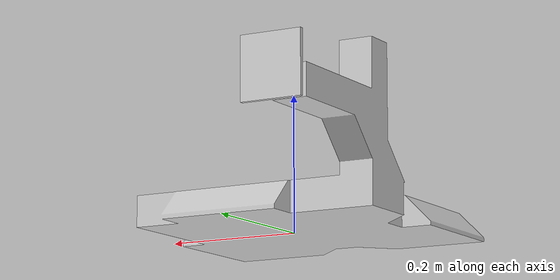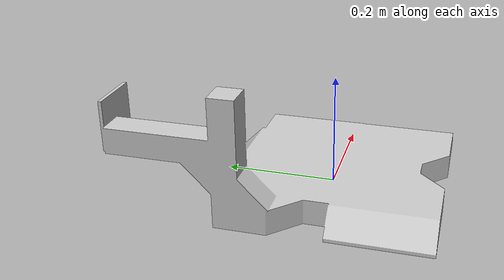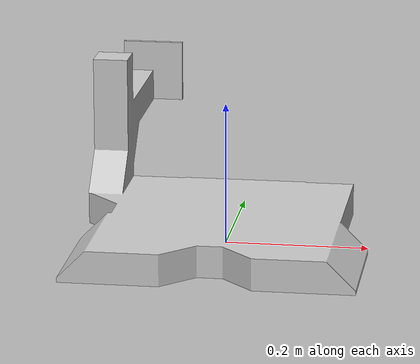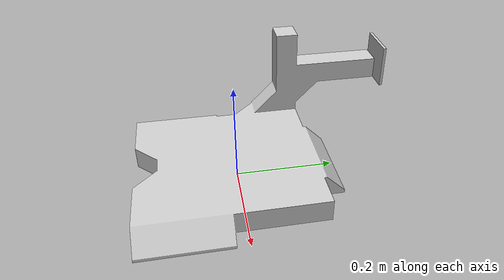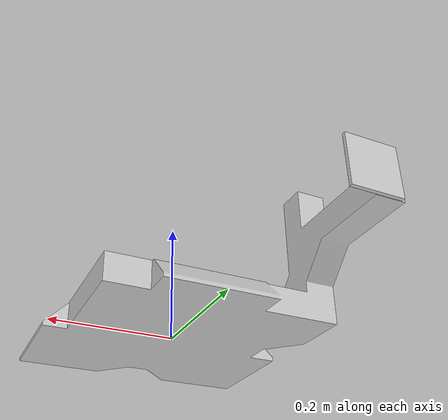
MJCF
<mujoco model="clr_carriage">
  <default>
    <default class="visual">
      <geom group="2" type="mesh" contype="0" conaffinity="0"/>
    </default>
    <default class="collision">
      <geom group="3" type="mesh"/>
    </default>
  </default>
  <asset>
    <material name="material_clr_carriage_0" specular="0.20000000000000004" shininess="1.0" rgba="0.80000000 0.80000000 0.80000000 1.0"/>
    <mesh file="clr_carriage.obj"/>
  </asset>
  <worldbody>
    <body name="clr_carriage">
      <geom material="material_clr_carriage_0" mesh="clr_carriage" class="visual"/>
      <geom mesh="clr_carriage" class="collision"/>
    </body>
  </worldbody>
</mujoco>
